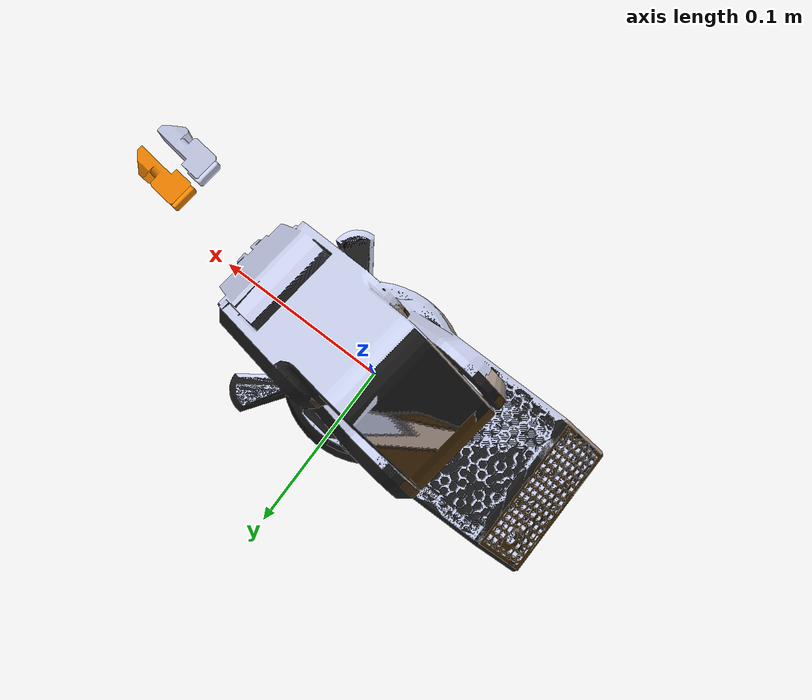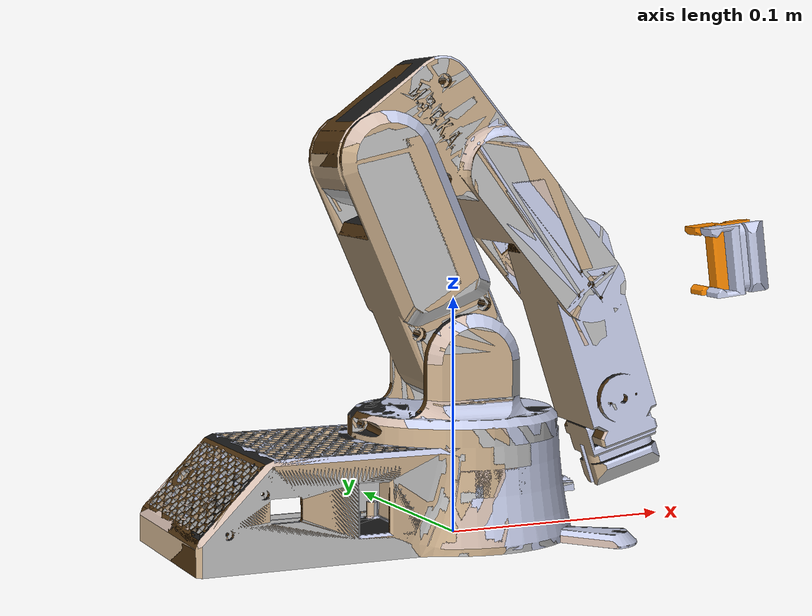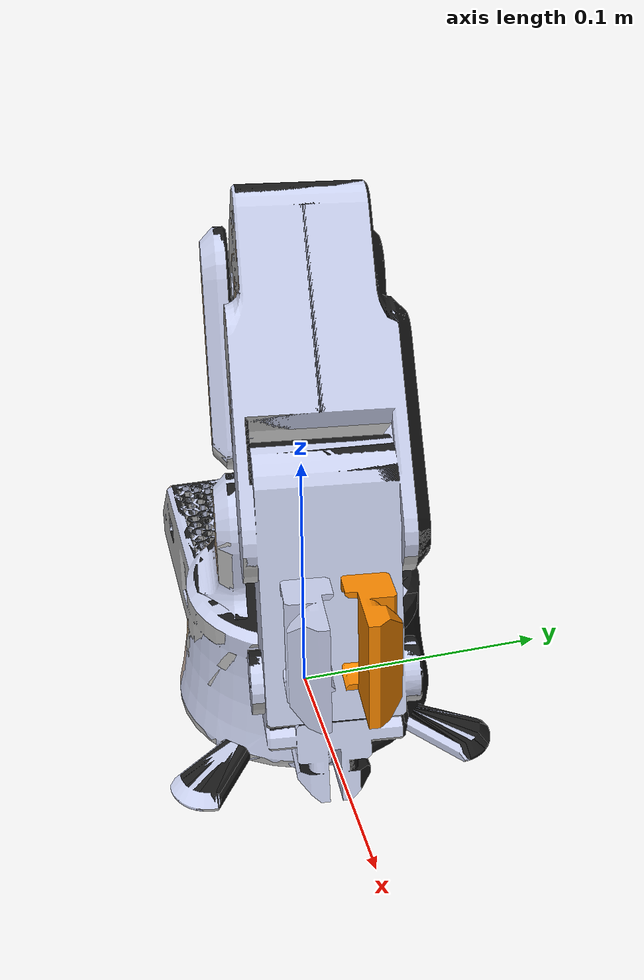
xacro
<?xml version="1.0" encoding="utf-8"?>
<robot
  name="real_robot_hardware">
 <link
    name="base_link">
    <inertial>
      <origin
        xyz="-0.0198856207674204 -0.00141287834695657 0.0217127988880841"
        rpy="0 0 0" />
      <mass
        value="0.134010546144028" />
      <inertia
        ixx="0.000135168968359235"
        ixy="-6.91009827779043E-06"
        ixz="-4.27277665593455E-07"
        iyy="0.000264392316474499"
        iyz="2.33805748764974E-06"
        izz="0.000360228822623865" />
    </inertial>
    <visual>
      <origin
        xyz="0 0 0"
        rpy="0 0 0" />
      <geometry>
        <mesh
          filename="package://roboflex_description/meshes/base_link.STL" />
      </geometry>
      <material
        name="">
        <color
          rgba="0.101960784313725 0.101960784313725 0.101960784313725 1" />
      </material>
    </visual>
    <collision>
      <origin
        xyz="0 0 0"
        rpy="0 0 0" />
      <geometry>
        <mesh
          filename="package://roboflex_description/meshes/base_link.STL" />
      </geometry>
    </collision>
  </link>
  <link
    name="link_1">
    <inertial>
      <origin
        xyz="-0.00073997712798396 -0.00184239661298101 0.0040056795424445"
        rpy="0 0 0" />
      <mass
        value="0.063835393644477" />
      <inertia
        ixx="2.05819135406668E-05"
        ixy="2.15457273252048E-06"
        ixz="-6.96555382329067E-08"
        iyy="3.73317819706095E-05"
        iyz="8.508005425439E-08"
        izz="3.90116421726318E-05" />
    </inertial>
    <visual>
      <origin
        xyz="0 0 0"
        rpy="0 0 0" />
      <geometry>
        <mesh
          filename="package://roboflex_description/meshes/link_1.STL" />
      </geometry>
      <material
        name="">
        <color
          rgba="0.109803921568627 0.109803921568627 0.109803921568627 1" />
      </material>
    </visual>
    <collision>
      <origin
        xyz="0 0 0"
        rpy="0 0 0" />
      <geometry>
        <mesh
          filename="package://roboflex_description/meshes/link_1.STL" />
      </geometry>
    </collision>
  </link>
  <joint
    name="joint_1"
    type="revolute">
    <origin
      xyz="0 0 0.0515"
      rpy="0 0 0" />
    <parent
      link="base_link" />
    <child
      link="link_1" />
    <axis
      xyz="0 0 1" />
    <limit
      lower="-1.57"
      upper="1.57"
      effort="1000"
      velocity="1000" />
  </joint>
  <link
    name="link_2">
    <inertial>
      <origin
        xyz="-0.0220592800955566 -0.0339840872734844 0.0405723636080762"
        rpy="0 0 0" />
      <mass
        value="0.0748071610042354" />
      <inertia
        ixx="7.16078709909108E-05"
        ixy="1.32335423542845E-06"
        ixz="2.35491971948772E-05"
        iyy="8.8624298839474E-05"
        iyz="-9.88088305055191E-07"
        izz="2.79762099807478E-05" />
    </inertial>
    <visual>
      <origin
        xyz="0 0 0"
        rpy="0 0 0" />
      <geometry>
        <mesh
          filename="package://roboflex_description/meshes/link_2.STL" />
      </geometry>
      <material
        name="">
        <color
          rgba="0.792156862745098 0.819607843137255 0.933333333333333 1" />
      </material>
    </visual>
    <collision>
      <origin
        xyz="0 0 0"
        rpy="0 0 0" />
      <geometry>
        <mesh
          filename="package://roboflex_description/meshes/link_2.STL" />
      </geometry>
    </collision>
  </link>
  <joint
    name="joint_2"
    type="revolute">
    <origin
      xyz="0.0040533 0.032246 0.024"
      rpy="0 0 0" />
    <parent
      link="link_1" />
    <child
      link="link_2" />
    <axis
      xyz="0.12444 0.99223 0" />
    <limit
      lower="-1.57"
      upper="1.57"
      effort="1000"
      velocity="1000" />
  </joint>
  <link
    name="link_3">
    <inertial>
      <origin
        xyz="0.0396240818912382 -0.0328556511393453 -0.00593954031553318"
        rpy="0 0 0" />
      <mass
        value="0.0758174776124458" />
      <inertia
        ixx="4.96269043552773E-05"
        ixy="-1.7723547111495E-07"
        ixz="3.04448966068349E-05"
        iyy="0.000109254251349246"
        iyz="4.53261122968051E-07"
        izz="6.91382665468306E-05" />
    </inertial>
    <visual>
      <origin
        xyz="0 0 0"
        rpy="0 0 0" />
      <geometry>
        <mesh
          filename="package://roboflex_description/meshes/link_3.STL" />
      </geometry>
      <material
        name="">
        <color
          rgba="1 0.549019607843137 0 0.25" />
      </material>
    </visual>
    <collision>
      <origin
        xyz="0 0 0"
        rpy="0 0 0" />
      <geometry>
        <mesh
          filename="package://roboflex_description/meshes/link_3.STL" />
      </geometry>
    </collision>
  </link>
  <joint
    name="joint_3"
    type="revolute">
    <origin
      xyz="-0.034874 0.0053814 0.0828"
      rpy="0 0 -0.12476" />
    <parent
      link="link_2" />
    <child
      link="link_3" />
    <axis
      xyz="0 1 0" />
    <limit
      lower="-1.57"
      upper="1.57"
      effort="1000"
      velocity="1000" />
  </joint>
  <link
    name="gripper_body_link">
    <inertial>
      <origin
        xyz="0.0071443767351853 -0.0316783279545622 -0.0228792470549594"
        rpy="0 0 0" />
      <mass
        value="0.0774670735080687" />
      <inertia
        ixx="4.69391687400588E-05"
        ixy="-8.5383245069063E-07"
        ixz="8.65098318178043E-06"
        iyy="4.11454270619738E-05"
        iyz="2.77915843402062E-06"
        izz="2.20817960680195E-05" />
    </inertial>
    <visual>
      <origin
        xyz="0 0 0"
        rpy="0 0 0" />
      <geometry>
        <mesh
          filename="package://roboflex_description/meshes/gripper_body_link.STL" />
      </geometry>
      <material
        name="">
        <color
          rgba="0.752941176470588 0.752941176470588 0.752941176470588 1" />
      </material>
    </visual>
    <collision>
      <origin
        xyz="0 0 0"
        rpy="0 0 0" />
      <geometry>
        <mesh
          filename="package://roboflex_description/meshes/gripper_body_link.STL" />
      </geometry>
    </collision>
  </link>
  <joint
    name="joint_gripper_body"
    type="revolute">
    <origin
      xyz="0.087497 0.001 -0.052186"
      rpy="0 0 0" />
    <parent
      link="link_3" />
    <child
      link="gripper_body_link" />
    <axis
      xyz="0 1 0" />
    <limit
      lower="-1"
      upper="1"
      effort="1000"
      velocity="1000" />
  </joint>
  <link
    name="gripper_left_link">
    <inertial>
      <origin
        xyz="0.0227317322742014 -0.0282591595043374 -0.0735491431567077"
        rpy="0 0 0" />
      <mass
        value="0.00458928127195506" />
      <inertia
        ixx="2.48457346408623E-07"
        ixy="1.75608919703415E-09"
        ixz="-5.74309565861384E-08"
        iyy="5.92189254891711E-07"
        iyz="-5.61714965689839E-09"
        izz="4.14205381701304E-07" />
    </inertial>
    <visual>
      <origin
        xyz="0 0 0"
        rpy="0 0 0" />
      <geometry>
        <mesh
          filename="package://roboflex_description/meshes/gripper_left_link.STL" />
      </geometry>
      <material
        name="">
        <color
          rgba="1 0.545098039215686 0 1" />
      </material>
    </visual>
    <collision>
      <origin
        xyz="0 0 0"
        rpy="0 0 0" />
      <geometry>
        <mesh
          filename="package://roboflex_description/meshes/gripper_left_link.STL" />
      </geometry>
    </collision>
  </link>
  <joint
    name="joint_gripper_left_part"
    type="prismatic">
    <origin
      xyz="0 0 0"
      rpy="0 0 0" />
    <parent
      link="gripper_body_link" />
    <child
      link="gripper_left_link" />
    <axis
      xyz="0 1 0" />
    <limit
      lower="-0.4"
      upper="0"
      effort="1000"
      velocity="1000" />
  </joint>
  <link
    name="gripper_right_link">
    <inertial>
      <origin
        xyz="0.0227318221834384 -0.0403429519495776 -0.0735494307466795"
        rpy="0 0 0" />
      <mass
        value="0.00458915923311391" />
      <inertia
        ixx="2.48437178254512E-07"
        ixy="-1.75377298952243E-09"
        ixz="-5.74288842520944E-08"
        iyy="5.92150639018822E-07"
        iyz="5.60974087364876E-09"
        izz="4.14179232708343E-07" />
    </inertial>
    <visual>
      <origin
        xyz="0 0 0"
        rpy="0 0 0" />
      <geometry>
        <mesh
          filename="package://roboflex_description/meshes/gripper_right_link.STL" />
      </geometry>
      <material
        name="">
        <color
          rgba="0.796078431372549 0.823529411764706 0.937254901960784 1" />
      </material>
    </visual>
    <collision>
      <origin
        xyz="0 0 0"
        rpy="0 0 0" />
      <geometry>
        <mesh
          filename="package://roboflex_description/meshes/gripper_right_link.STL" />
      </geometry>
    </collision>
  </link>
  <joint
    name="joint_gripper_right_part"
    type="prismatic">
    <origin
      xyz="0 0 0"
      rpy="0 0 0" />
    <parent
      link="gripper_body_link" />
    <child
      link="gripper_right_link" />
    <axis
      xyz="0 1 0" />
    <limit
      lower="0"
      upper="0.4"
      effort="1000"
      velocity="1000" />
  </joint>

  <ros2_control name="RealHardwareSystem" type="system">
        <hardware>
          <plugin>dynamixel_hardware/DynamixelHardware</plugin>
        </hardware>

        <joint name="joint_1">
            <command_interface name="position">
                <param name="min">-1.57</param>
                <param name="max">1.57</param>
            </command_interface>
            <state_interface name="position">
                <param name="initial_value">0.0</param>
            </state_interface>

        </joint>

        <joint name="joint_2">
            <command_interface name="position">
                <param name="min">-2.879793</param>
                <param name="max">2.879793</param>
            </command_interface>
            <state_interface name="position">
                <param name="initial_value">0.0</param>
            </state_interface>
        </joint>

        <joint name="joint_3">
            <command_interface name="position">
                <param name="min">-2.879793</param>
                <param name="max">2.879793</param>
            </command_interface>
            <state_interface name="position">
                <param name="initial_value">0.0</param>
            </state_interface>
        </joint>

        <joint name="joint_gripper_body">
            <command_interface name="position">
                <param name="min">-2.879793</param>
                <param name="max">2.879793</param>
            </command_interface>
            <state_interface name="position">
                <param name="initial_value">0.0</param>
            </state_interface>
        </joint>

        <joint name="joint_gripper_left_part">
            <command_interface name="position">
                <param name="min">0</param>
                <param name="max">1.57</param>
            </command_interface>
            <state_interface name="position">
                <param name="initial_value">0.0</param>
            </state_interface>
        </joint>

    </ros2_control>

</robot>
